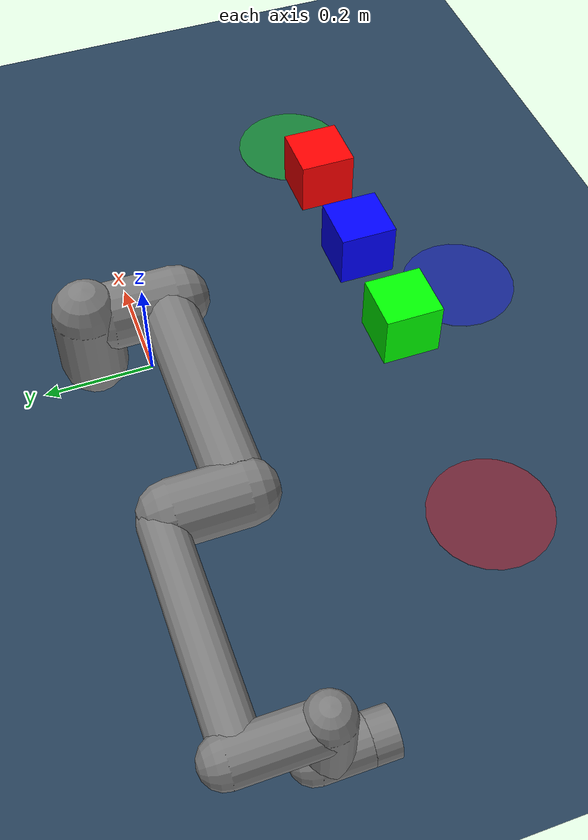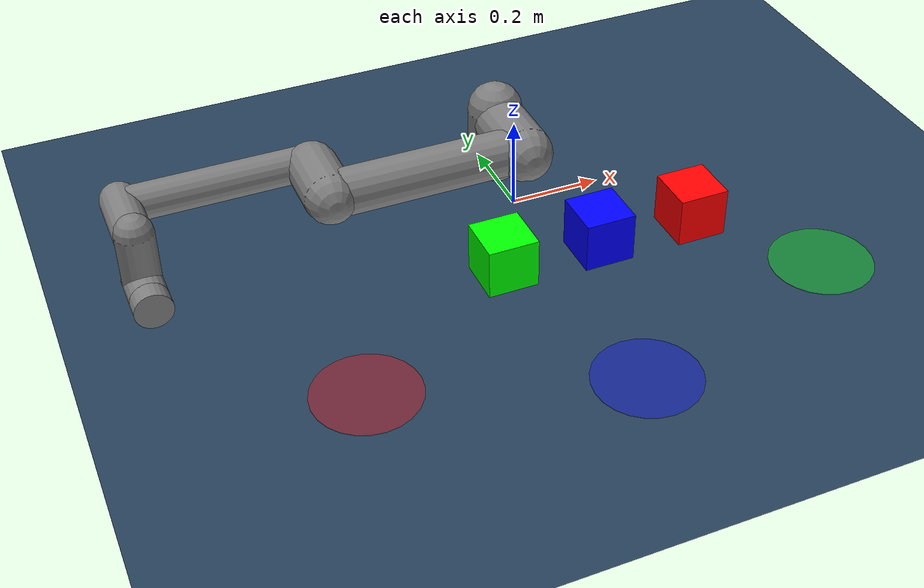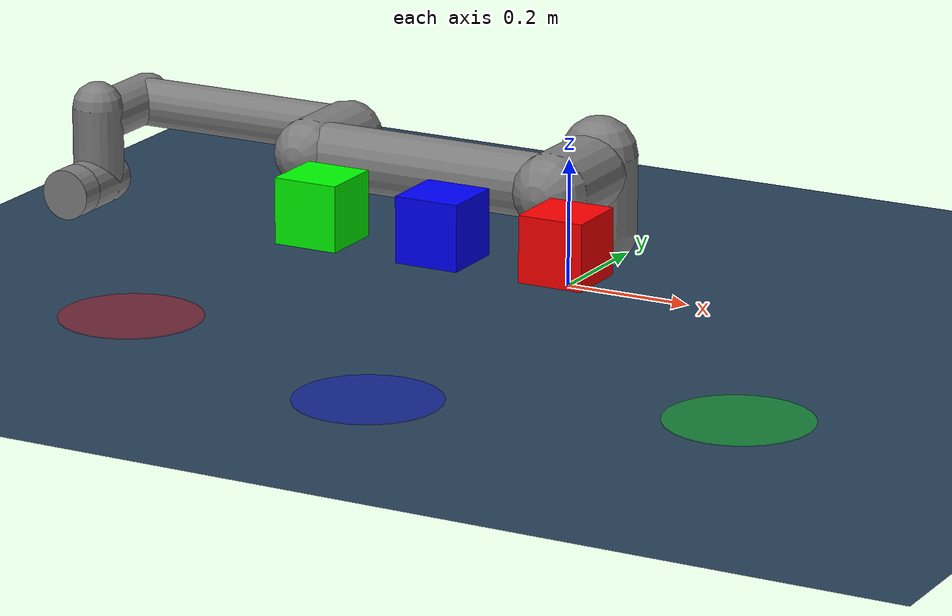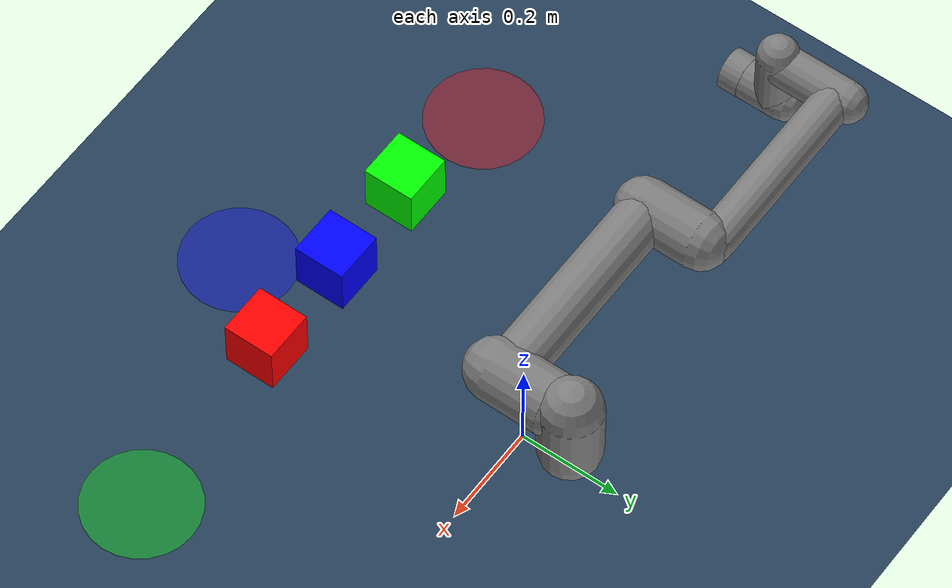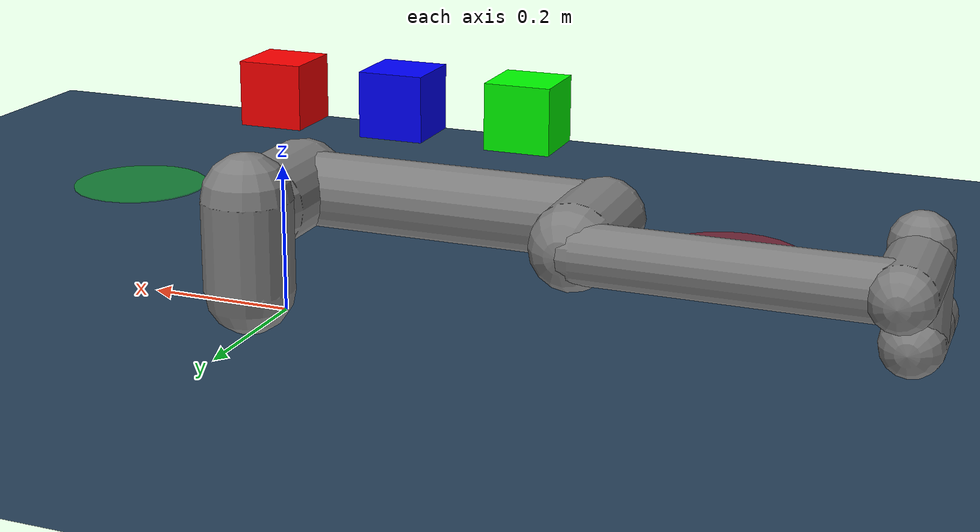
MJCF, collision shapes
<mujoco>
    <!-- Define the coordinate system -->
    <compiler angle="degree" coordinate="local"/>
    <option integrator="Euler" timestep="0.002" gravity="0 0 -9.81"/>

    <statistic center="0 -0.15 0.4" extent="0.8"/>

    <!-- Include the UR5e robot model -->
    <include file="ur5e.xml"/>

    <!-- Visuals and Assets -->
    <visual>
        <headlight diffuse="0.6 0.6 0.6" ambient="0.1 0.1 0.1" specular="0 0 0"/>
        <rgba haze="0.15 0.25 0.35 1"/>
        <global azimuth="120" elevation="-20"/>
    </visual>

    <asset>
        <texture type="skybox" builtin="gradient" rgb1="0.3 0.5 0.7" rgb2="0 0 0" width="512" height="3072"/>
        <texture type="2d" name="groundplane" builtin="checker" mark="edge" rgb1="0.2 0.3 0.4" rgb2="0.1 0.2 0.3" markrgb="0.8 0.8 0.8" width="300" height="300"/>
        <material name="groundplane" texture="groundplane" texuniform="true" texrepeat="5 5" reflectance="0.2"/>
    </asset>

    <worldbody>
        <!-- Floor -->
        <geom name="floor" type="plane" size="1 1 0.01" pos="0 0 0" material="groundplane"/>

        <!-- Target landing zones -->
        <geom name="zone_green" type="cylinder" pos="0.50 -0.45 0.001" size="0.11 0.001" rgba="0 1 0 0.35" contype="0" conaffinity="0"/>
        <geom name="zone_blue"  type="cylinder" pos="0.0 -0.62 0.001"  size="0.11 0.001" rgba="0 0 1 0.35" contype="0" conaffinity="0"/>
        <geom name="zone_red"   type="cylinder" pos="-0.50 -0.45 0.001" size="0.11 0.001" rgba="1 0 0 0.35" contype="0" conaffinity="0"/>

        <!-- Red Square Puck -->
        <body name="red_box" pos="0.2 -0.4 0.2">
            <joint type="free"/>
            <geom type="box" size="0.05 0.05 0.05" rgba="1 0 0 1" friction="0.2 0.05 0.001"/>
        </body>

        <!-- Blue Square Puck -->
        <body name="blue_puck" pos="0.0 -0.4 0.2">
            <joint type="free"/>
            <geom type="box" size="0.05 0.05 0.05" rgba="0 0 1 1" friction="0.2 0.05 0.001"/>
        </body>

        <!-- Green Square Puck -->
        <body name="green_puck" pos="-0.2 -0.4 0.2">
            <joint type="free"/>
            <geom type="box" size="0.05 0.05 0.05" rgba="0 1 0 1" friction="0.2 0.05 0.001"/>
        </body>
    </worldbody>
</mujoco>

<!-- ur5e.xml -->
<mujoco model="ur5e">
    <compiler angle="radian" meshdir="assets" autolimits="true"/>

    <option integrator="Euler"/>

    <default>
        <default class="ur5e">
        <material specular="0.5" shininess="0.25"/>
        <joint axis="0 1 0" range="-6.28319 6.28319" armature="0.1"/>
        <general gaintype="fixed" biastype="affine" ctrlrange="-6.2831 6.2831" gainprm="2000" biasprm="0 -2000 -400"
            forcerange="-150 150"/>
        <default class="size3">
            <default class="size3_limited">
            <joint range="-3.1415 3.1415"/>
            <general ctrlrange="-3.1415 3.1415"/>
            </default>
        </default>
        <default class="size1">
            <general gainprm="500" biasprm="0 -500 -100" forcerange="-28 28"/>
        </default>
        <default class="visual">
            <geom type="mesh" contype="0" conaffinity="0" group="2"/>
        </default>
        <default class="collision">
            <geom type="capsule" group="3"/>
            <default class="eef_collision">
            <geom type="cylinder"/>
            </default>
        </default>
        <site size="0.001" rgba="0.5 0.5 0.5 0.3" group="4"/>
        </default>
    </default>

    <asset>
        <material class="ur5e" name="black" rgba="0.033 0.033 0.033 1"/>
        <material class="ur5e" name="jointgray" rgba="0.278 0.278 0.278 1"/>
        <material class="ur5e" name="linkgray" rgba="0.82 0.82 0.82 1"/>
        <material class="ur5e" name="urblue" rgba="0.49 0.678 0.8 1"/>

        <mesh file="base_0.obj"/>
        <mesh file="base_1.obj"/>
        <mesh file="shoulder_0.obj"/>
        <mesh file="shoulder_1.obj"/>
        <mesh file="shoulder_2.obj"/>
        <mesh file="upperarm_0.obj"/>
        <mesh file="upperarm_1.obj"/>
        <mesh file="upperarm_2.obj"/>
        <mesh file="upperarm_3.obj"/>
        <mesh file="forearm_0.obj"/>
        <mesh file="forearm_1.obj"/>
        <mesh file="forearm_2.obj"/>
        <mesh file="forearm_3.obj"/>
        <mesh file="wrist1_0.obj"/>
        <mesh file="wrist1_1.obj"/>
        <mesh file="wrist1_2.obj"/>
        <mesh file="wrist2_0.obj"/>
        <mesh file="wrist2_1.obj"/>
        <mesh file="wrist2_2.obj"/>
        <mesh file="wrist3.obj"/>
    </asset>

    <worldbody>
        <light name="spotlight" mode="targetbodycom" target="wrist_2_link" pos="0 -1 2"/>
        <body name="base" pos="0 0.1 0" quat="0 0 0 -1" childclass="ur5e">
        <inertial mass="4.0" pos="0 0 0" diaginertia="0.00443333156 0.00443333156 0.0072"/>
        <geom mesh="base_0" material="black" class="visual"/>
        <geom mesh="base_1" material="jointgray" class="visual"/>
        <body name="shoulder_link" pos="0 0 0.163">
            <inertial mass="3.7" pos="0 0 0" diaginertia="0.0102675 0.0102675 0.00666"/>
            <joint name="shoulder_pan_joint" class="size3" axis="0 0 1"/>
            <geom mesh="shoulder_0" material="urblue" class="visual"/>
            <geom mesh="shoulder_1" material="black" class="visual"/>
            <geom mesh="shoulder_2" material="jointgray" class="visual"/>
            <geom class="collision" size="0.06 0.06" pos="0 0 -0.04"/>
            <body name="upper_arm_link" pos="0 0.138 0" quat="1 0 1 0">
            <inertial mass="8.393" pos="0 0 0.2125" diaginertia="0.133886 0.133886 0.0151074"/>
            <joint name="shoulder_lift_joint" class="size3"/>
            <geom mesh="upperarm_0" material="linkgray" class="visual"/>
            <geom mesh="upperarm_1" material="black" class="visual"/>
            <geom mesh="upperarm_2" material="jointgray" class="visual"/>
            <geom mesh="upperarm_3" material="urblue" class="visual"/>
            <geom class="collision" pos="0 -0.04 0" quat="1 1 0 0" size="0.06 0.06"/>
            <geom class="collision" size="0.05 0.2" pos="0 0 0.2"/>
            <body name="forearm_link" pos="0 -0.131 0.425">
                <inertial mass="2.275" pos="0 0 0.196" diaginertia="0.0311796 0.0311796 0.004095"/>
                <joint name="elbow_joint" class="size3_limited"/>
                <geom mesh="forearm_0" material="urblue" class="visual"/>
                <geom mesh="forearm_1" material="linkgray" class="visual"/>
                <geom mesh="forearm_2" material="black" class="visual"/>
                <geom mesh="forearm_3" material="jointgray" class="visual"/>
                <geom class="collision" pos="0 0.08 0" quat="1 1 0 0" size="0.055 0.06"/>
                <geom class="collision" size="0.038 0.19" pos="0 0 0.2"/>
                <body name="wrist_1_link" pos="0 0 0.392" quat="1 0 1 0">
                <inertial mass="1.219" pos="0 0.127 0" diaginertia="0.0025599 0.0025599 0.0021942"/>
                <joint name="wrist_1_joint" class="size1"/>
                <geom mesh="wrist1_0" material="black" class="visual"/>
                <geom mesh="wrist1_1" material="urblue" class="visual"/>
                <geom mesh="wrist1_2" material="jointgray" class="visual"/>
                <geom class="collision" pos="0 0.05 0" quat="1 1 0 0" size="0.04 0.07"/>
                <body name="wrist_2_link" pos="0 0.127 0">
                    <inertial mass="1.219" pos="0 0 0.1" diaginertia="0.0025599 0.0025599 0.0021942"/>
                    <joint name="wrist_2_joint" axis="0 0 1" class="size1"/>
                    <geom mesh="wrist2_0" material="black" class="visual"/>
                    <geom mesh="wrist2_1" material="urblue" class="visual"/>
                    <geom mesh="wrist2_2" material="jointgray" class="visual"/>
                    <geom class="collision" size="0.04 0.06" pos="0 0 0.04"/>
                    <geom class="collision" pos="0 0.02 0.1" quat="1 1 0 0" size="0.04 0.04"/>
                    <body name="wrist_3_link" pos="0 0 0.1">
                    <inertial mass="0.1889" pos="0 0.0771683 0" quat="1 0 0 1"
                        diaginertia="0.000132134 9.90863e-05 9.90863e-05"/>
                    <joint name="wrist_3_joint" class="size1"/>
                    <geom material="linkgray" mesh="wrist3" class="visual"/>
                    <geom class="eef_collision" pos="0 0.08 0" quat="1 1 0 0" size="0.04 0.02"/>
                    <site name="attachment_site" pos="0 0.1 0" quat="-1 1 0 0"/>
                    </body>
                </body>
                </body>
            </body>
            </body>
        </body>
        </body>
    </worldbody>

    <actuator>
        <general class="size3" name="shoulder_pan" joint="shoulder_pan_joint"/>
        <general class="size3" name="shoulder_lift" joint="shoulder_lift_joint"/>
        <general class="size3_limited" name="elbow" joint="elbow_joint"/>
        <general class="size1" name="wrist_1" joint="wrist_1_joint"/>
        <general class="size1" name="wrist_2" joint="wrist_2_joint"/>
        <general class="size1" name="wrist_3" joint="wrist_3_joint"/>
    </actuator>

</mujoco>
